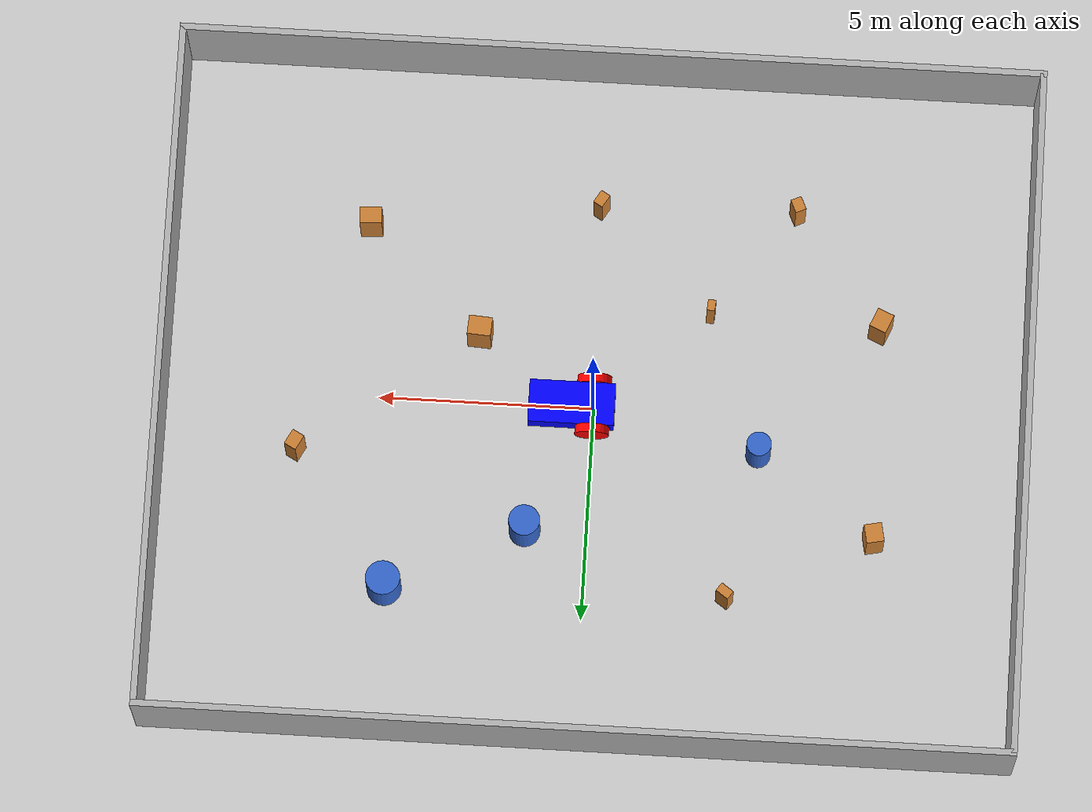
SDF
<?xml version="1.0"?>
<sdf version="1.8">
  <world name="room">
    <physics name="1ms" type="ignored">
      <max_step_size>0.001</max_step_size>
      <real_time_factor>1.0</real_time_factor>
    </physics>
    <plugin filename="gz-sim-physics-system" name="gz::sim::systems::Physics"/>
    <plugin filename="gz-sim-user-commands-system" name="gz::sim::systems::UserCommands"/>
    <plugin filename="gz-sim-scene-broadcaster-system" name="gz::sim::systems::SceneBroadcaster"/>
    <plugin filename="gz-sim-sensors-system" name="gz::sim::systems::Sensors">
      <render_engine>ogre2</render_engine>
    </plugin>

    <light type="directional" name="sun">
      <cast_shadows>true</cast_shadows>
      <pose>0 0 10 0 0 0</pose>
      <diffuse>0.8 0.8 0.8 1</diffuse>
      <specular>0.2 0.2 0.2 1</specular>
      <direction>-0.5 0.1 -0.9</direction>
    </light>

    <model name="ground_plane">
      <static>true</static>
      <link name="link">
        <collision name="c"><geometry><plane><normal>0 0 1</normal><size>100 100</size></plane></geometry></collision>
        <visual name="v">
          <geometry><plane><normal>0 0 1</normal><size>100 100</size></plane></geometry>
          <material><ambient>0.8 0.8 0.8 1</ambient><diffuse>0.8 0.8 0.8 1</diffuse></material>
        </visual>
      </link>
    </model>

    <model name="wall_n">
      <static>true</static>
      <pose>0.000 8.000 1.250 0 0 0.000</pose>
      <link name="link">
        <collision name="c"><geometry><box><size>20.150 0.15 2.5</size></box></geometry></collision>
        <visual name="v">
          <geometry><box><size>20.150 0.15 2.5</size></box></geometry>
          <material><ambient>0.7 0.7 0.7 1</ambient><diffuse>0.7 0.7 0.7 1</diffuse></material>
        </visual>
      </link>
    </model>
    <model name="wall_s">
      <static>true</static>
      <pose>0.000 -8.000 1.250 0 0 0.000</pose>
      <link name="link">
        <collision name="c"><geometry><box><size>20.150 0.15 2.5</size></box></geometry></collision>
        <visual name="v">
          <geometry><box><size>20.150 0.15 2.5</size></box></geometry>
          <material><ambient>0.7 0.7 0.7 1</ambient><diffuse>0.7 0.7 0.7 1</diffuse></material>
        </visual>
      </link>
    </model>
    <model name="wall_e">
      <static>true</static>
      <pose>10.000 0.000 1.250 0 0 0.000</pose>
      <link name="link">
        <collision name="c"><geometry><box><size>0.15 16.000 2.5</size></box></geometry></collision>
        <visual name="v">
          <geometry><box><size>0.15 16.000 2.5</size></box></geometry>
          <material><ambient>0.7 0.7 0.7 1</ambient><diffuse>0.7 0.7 0.7 1</diffuse></material>
        </visual>
      </link>
    </model>
    <model name="wall_w">
      <static>true</static>
      <pose>-10.000 0.000 1.250 0 0 0.000</pose>
      <link name="link">
        <collision name="c"><geometry><box><size>0.15 16.000 2.5</size></box></geometry></collision>
        <visual name="v">
          <geometry><box><size>0.15 16.000 2.5</size></box></geometry>
          <material><ambient>0.7 0.7 0.7 1</ambient><diffuse>0.7 0.7 0.7 1</diffuse></material>
        </visual>
      </link>
    </model>
    <model name="obs_0">
      <static>true</static>
      <pose>-6.569 -2.212 0.625 0 0 1.157</pose>
      <link name="link">
        <collision name="c"><geometry><box><size>0.464 0.411 1.250</size></box></geometry></collision>
        <visual name="v">
          <geometry><box><size>0.464 0.411 1.250</size></box></geometry>
          <material><ambient>0.8 0.5 0.2 1</ambient><diffuse>0.8 0.5 0.2 1</diffuse></material>
        </visual>
      </link>
    </model>
    <model name="obs_1">
      <static>true</static>
      <pose>5.417 -4.053 0.625 0 0 0.047</pose>
      <link name="link">
        <collision name="c"><geometry><box><size>0.514 0.379 1.250</size></box></geometry></collision>
        <visual name="v">
          <geometry><box><size>0.514 0.379 1.250</size></box></geometry>
          <material><ambient>0.8 0.5 0.2 1</ambient><diffuse>0.8 0.5 0.2 1</diffuse></material>
        </visual>
      </link>
    </model>
    <model name="obs_2">
      <static>true</static>
      <pose>0.075 -4.754 0.625 0 0 1.021</pose>
      <link name="link">
        <collision name="c"><geometry><box><size>0.330 0.242 1.250</size></box></geometry></collision>
        <visual name="v">
          <geometry><box><size>0.330 0.242 1.250</size></box></geometry>
          <material><ambient>0.8 0.5 0.2 1</ambient><diffuse>0.8 0.5 0.2 1</diffuse></material>
        </visual>
      </link>
    </model>
    <model name="obs_3">
      <static>true</static>
      <pose>-3.880 0.882 0.625 0 0 0.010</pose>
      <link name="link">
        <collision name="c"><geometry><cylinder><radius>0.286</radius><length>1.250</length></cylinder></geometry></collision>
        <visual name="v">
          <geometry><cylinder><radius>0.286</radius><length>1.250</length></cylinder></geometry>
          <material><ambient>0.2 0.4 0.8 1</ambient><diffuse>0.2 0.4 0.8 1</diffuse></material>
        </visual>
      </link>
    </model>
    <model name="obs_4">
      <static>true</static>
      <pose>2.724 -1.557 0.625 0 0 1.504</pose>
      <link name="link">
        <collision name="c"><geometry><box><size>0.441 0.547 1.250</size></box></geometry></collision>
        <visual name="v">
          <geometry><box><size>0.441 0.547 1.250</size></box></geometry>
          <material><ambient>0.8 0.5 0.2 1</ambient><diffuse>0.8 0.5 0.2 1</diffuse></material>
        </visual>
      </link>
    </model>
    <model name="obs_5">
      <static>true</static>
      <pose>1.424 2.987 0.625 0 0 0.842</pose>
      <link name="link">
        <collision name="c"><geometry><cylinder><radius>0.362</radius><length>1.250</length></cylinder></geometry></collision>
        <visual name="v">
          <geometry><cylinder><radius>0.362</radius><length>1.250</length></cylinder></geometry>
          <material><ambient>0.2 0.4 0.8 1</ambient><diffuse>0.2 0.4 0.8 1</diffuse></material>
        </visual>
      </link>
    </model>
    <model name="obs_6">
      <static>true</static>
      <pose>-3.273 4.386 0.625 0 0 0.957</pose>
      <link name="link">
        <collision name="c"><geometry><box><size>0.226 0.336 1.250</size></box></geometry></collision>
        <visual name="v">
          <geometry><box><size>0.226 0.336 1.250</size></box></geometry>
          <material><ambient>0.8 0.5 0.2 1</ambient><diffuse>0.8 0.5 0.2 1</diffuse></material>
        </visual>
      </link>
    </model>
    <model name="obs_7">
      <static>true</static>
      <pose>6.834 1.394 0.625 0 0 1.075</pose>
      <link name="link">
        <collision name="c"><geometry><box><size>0.385 0.303 1.250</size></box></geometry></collision>
        <visual name="v">
          <geometry><box><size>0.385 0.303 1.250</size></box></geometry>
          <material><ambient>0.8 0.5 0.2 1</ambient><diffuse>0.8 0.5 0.2 1</diffuse></material>
        </visual>
      </link>
    </model>
    <model name="obs_8">
      <static>true</static>
      <pose>-2.608 -2.354 0.625 0 0 1.481</pose>
      <link name="link">
        <collision name="c"><geometry><box><size>0.257 0.184 1.250</size></box></geometry></collision>
        <visual name="v">
          <geometry><box><size>0.257 0.184 1.250</size></box></geometry>
          <material><ambient>0.8 0.5 0.2 1</ambient><diffuse>0.8 0.5 0.2 1</diffuse></material>
        </visual>
      </link>
    </model>
    <model name="obs_9">
      <static>true</static>
      <pose>4.587 4.526 0.625 0 0 1.333</pose>
      <link name="link">
        <collision name="c"><geometry><cylinder><radius>0.400</radius><length>1.250</length></cylinder></geometry></collision>
        <visual name="v">
          <geometry><cylinder><radius>0.400</radius><length>1.250</length></cylinder></geometry>
          <material><ambient>0.2 0.4 0.8 1</ambient><diffuse>0.2 0.4 0.8 1</diffuse></material>
        </visual>
      </link>
    </model>
    <model name="obs_10">
      <static>true</static>
      <pose>-4.499 -4.876 0.625 0 0 0.431</pose>
      <link name="link">
        <collision name="c"><geometry><box><size>0.258 0.323 1.250</size></box></geometry></collision>
        <visual name="v">
          <geometry><box><size>0.258 0.323 1.250</size></box></geometry>
          <material><ambient>0.8 0.5 0.2 1</ambient><diffuse>0.8 0.5 0.2 1</diffuse></material>
        </visual>
      </link>
    </model>
    <model name="obs_11">
      <static>true</static>
      <pose>-6.630 2.825 0.625 0 0 0.198</pose>
      <link name="link">
        <collision name="c"><geometry><box><size>0.408 0.438 1.250</size></box></geometry></collision>
        <visual name="v">
          <geometry><box><size>0.408 0.438 1.250</size></box></geometry>
          <material><ambient>0.8 0.5 0.2 1</ambient><diffuse>0.8 0.5 0.2 1</diffuse></material>
        </visual>
      </link>
    </model>
    <include>
      <uri>model://vehicle_blue</uri>
      <pose>0 0 0 0 0 0</pose>
    </include>
  </world>
</sdf>

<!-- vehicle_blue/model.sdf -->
<sdf version="1.8">
    <model name='vehicle_blue' canonical_link='chassis'>
            <pose>0 0 0 0 0 0</pose>   <!--the
            pose is relative to the world by default-->

            <!--chassis-->
            <link name='chassis'>
                <pose relative_to='__model__'>0.5 0 0.4 0 0 0</pose>
                <inertial> <!--inertial
                    properties of the link mass, inertia matix-->
                    <mass>1.14395</mass>
                    <inertia>
                        <ixx>0.095329</ixx>
                        <ixy>0</ixy>
                        <ixz>0</ixz>
                        <iyy>0.381317</iyy>
                        <iyz>0</iyz>
                        <izz>0.476646</izz>
                    </inertia>
                </inertial>
                <visual name='visual'>
                    <geometry>
                        <box>
                            <size>2.0 1.0 0.5</size>
                        </box>
                    </geometry>
                    <!--Color
                    of the link-->
                    <material>
                        <ambient>0.0 0.0 1.0 1</ambient>
                        <diffuse>0.0 0.0 1.0 1</diffuse>
                        <specular>0.0 0.0 1.0 1</specular>
                    </material>
                </visual>
                <collision name='collision'>
                    <geometry>
                        <box>
                            <size>2.0 1.0 0.5</size>
                        </box>
                    </geometry>
                </collision>

                <sensor name='lidar' type='gpu_lidar'>
                    <pose relative_to='chassis'>0 0 0.3 0 0 0</pose>
                    <topic>scan</topic>
                    <gz_frame_id>base_link</gz_frame_id>
                    <update_rate>10</update_rate>
                    <always_on>1</always_on>
                    <visualize>true</visualize>
                    <lidar>
                        <scan>
                            <horizontal>
                                <samples>640</samples>
                                <resolution>1</resolution>
                                <min_angle>-3.14159</min_angle>
                                <max_angle>3.14159</max_angle>
                            </horizontal>
                        </scan>
                        <range>
                            <min>0.3</min>
                            <max>12.0</max>
                            <resolution>0.01</resolution>
                        </range>
                    </lidar>
                </sensor>
            </link>

            <!--Left
            wheel-->
            <link name='left_wheel'>
                <pose relative_to="chassis">-0.5 0.6 0 -1.5707 0 0</pose> <!--angles
                are in radian-->
                <inertial>
                    <mass>1</mass>
                    <inertia>
                        <ixx>0.043333</ixx>
                        <ixy>0</ixy>
                        <ixz>0</ixz>
                        <iyy>0.043333</iyy>
                        <iyz>0</iyz>
                        <izz>0.08</izz>
                    </inertia>
                </inertial>
                <visual name='visual'>
                    <geometry>
                        <cylinder>
                            <radius>0.4</radius>
                            <length>0.2</length>
                        </cylinder>
                    </geometry>
                    <material>
                        <ambient>1.0 0.0 0.0 1</ambient>
                        <diffuse>1.0 0.0 0.0 1</diffuse>
                        <specular>1.0 0.0 0.0 1</specular>
                    </material>
                </visual>
                <collision name='collision'>
                    <geometry>
                        <cylinder>
                            <radius>0.4</radius>
                            <length>0.2</length>
                        </cylinder>
                    </geometry>
                </collision>
            </link>

            <!--The
            same as left wheel but with different position-->
            <link name='right_wheel'>
                <pose relative_to="chassis">-0.5 -0.6 0 -1.5707 0 0</pose> <!--angles
                are in radian-->
                <inertial>
                    <mass>1</mass>
                    <inertia>
                        <ixx>0.043333</ixx>
                        <ixy>0</ixy>
                        <ixz>0</ixz>
                        <iyy>0.043333</iyy>
                        <iyz>0</iyz>
                        <izz>0.08</izz>
                    </inertia>
                </inertial>
                <visual name='visual'>
                    <geometry>
                        <cylinder>
                            <radius>0.4</radius>
                            <length>0.2</length>
                        </cylinder>
                    </geometry>
                    <material>
                        <ambient>1.0 0.0 0.0 1</ambient>
                        <diffuse>1.0 0.0 0.0 1</diffuse>
                        <specular>1.0 0.0 0.0 1</specular>
                    </material>
                </visual>
                <collision name='collision'>
                    <geometry>
                        <cylinder>
                            <radius>0.4</radius>
                            <length>0.2</length>
                        </cylinder>
                    </geometry>
                </collision>
            </link>

            <!--arbitrary
            frame-->
            <frame name="caster_frame" attached_to='chassis'>
                <pose>0.8 0 -0.2 0 0 0</pose>
            </frame>

            <!--caster
            wheel-->
            <link name='caster'>
                <pose relative_to='caster_frame' />
                <inertial>
                    <mass>1</mass>
                    <inertia>
                        <ixx>0.016</ixx>
                        <ixy>0</ixy>
                        <ixz>0</ixz>
                        <iyy>0.016</iyy>
                        <iyz>0</iyz>
                        <izz>0.016</izz>
                    </inertia>
                </inertial>
                <visual name='visual'>
                    <geometry>
                        <sphere>
                            <radius>0.2</radius>
                        </sphere>
                    </geometry>
                    <material>
                        <ambient>0.0 1 0.0 1</ambient>
                        <diffuse>0.0 1 0.0 1</diffuse>
                        <specular>0.0 1 0.0 1</specular>
                    </material>
                </visual>
                <collision name='collision'>
                    <geometry>
                        <sphere>
                            <radius>0.2</radius>
                        </sphere>
                    </geometry>
                </collision>
            </link>

            <!--left
            wheel joint-->
            <joint name='left_wheel_joint' type='revolute'>
                <pose relative_to='left_wheel' />
                <parent>chassis</parent>
                <child>left_wheel</child>
                <axis>
                    <xyz expressed_in='__model__'>0 1 0</xyz> <!--can
                    be descired to any frame or even arbitrary frames-->
                    <limit>
                        <lower>-1.79769e+308</lower>    <!--negative
                        infinity-->
                        <upper>1.79769e+308</upper>     <!--positive
                        infinity-->
                    </limit>
                </axis>
            </joint>

            <!--right
            wheel joint-->
            <joint name='right_wheel_joint' type='revolute'>
                <pose relative_to='right_wheel' />
                <parent>chassis</parent>
                <child>right_wheel</child>
                <axis>
                    <xyz expressed_in='__model__'>0 1 0</xyz>
                    <limit>
                        <lower>-1.79769e+308</lower>    <!--negative
                        infinity-->
                        <upper>1.79769e+308</upper>     <!--positive
                        infinity-->
                    </limit>
                </axis>
            </joint>

            <!--caster
            wheel joint--> <!--pose
            default value is the child-->
            <joint name='caster_wheel' type='ball'>
                <parent>chassis</parent>
                <child>caster</child>
            </joint>

            <plugin filename="gz-sim-diff-drive-system"
                    name="gz::sim::systems::DiffDrive">
                <left_joint>left_wheel_joint</left_joint>
                <right_joint>right_wheel_joint</right_joint>
                <wheel_separation>1.2</wheel_separation>
                <wheel_radius>0.4</wheel_radius>
                <odom_publish_frequency>30</odom_publish_frequency>
                <topic>cmd_vel</topic>
                <odom_topic>odom</odom_topic>
                <tf_topic>tf</tf_topic>
                <frame_id>odom</frame_id>
                <child_frame_id>base_link</child_frame_id>
            </plugin>
        </model>
</sdf>
